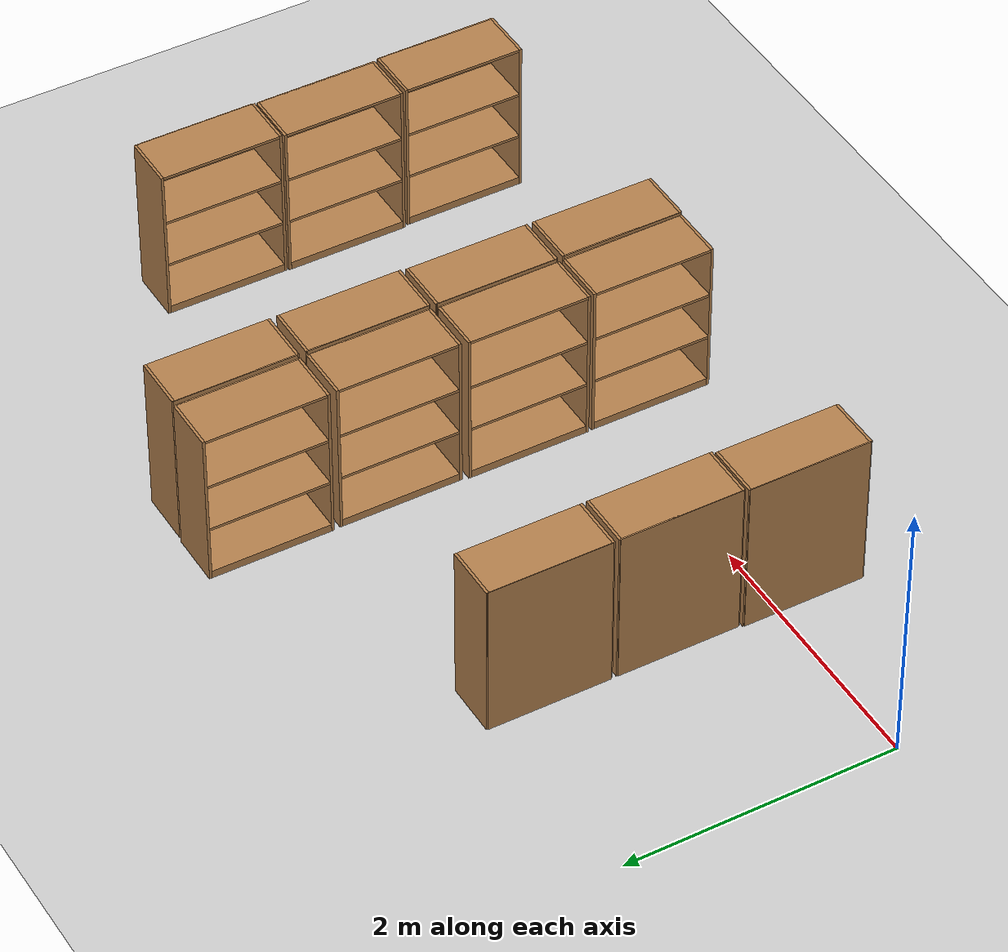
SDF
<sdf version="1.6">
 <world name="default">
  <model name="ground_plane">
   <static>1</static>
   <link name="link">
    <collision name="collision">
     <geometry><plane><normal>0 0 1</normal><size>100 100</size></plane></geometry>
     <surface>
      <contact><collide_bitmask>65535</collide_bitmask></contact>
      <friction><ode><mu>100</mu><mu2>50</mu2></ode></friction>
     </surface>
    </collision>
    <visual name="visual">
     <cast_shadows>0</cast_shadows>
     <geometry><plane><normal>0 0 1</normal><size>100 100</size></plane></geometry>
     <material>
      <script><uri>file://media/materials/scripts/gazebo.material</uri><name>Gazebo/Grey</name></script>
     </material>
    </visual>
   </link>
  </model>
  <model name="bookshelf_clone_110">
   <static>1</static>
   <link name="link">
    <inertial><mass>1</mass></inertial>
    <collision name="back">
     <pose>0 0.005 0.6 0 -0 0</pose>
     <geometry><box><size>0.9 0.01 1.2</size></box></geometry>
    </collision>
    <visual name="visual1">
     <pose>0 0.005 0.6 0 -0 0</pose>
     <geometry><box><size>0.9 0.01 1.2</size></box></geometry>
     <material>
      <script><uri>file://media/materials/scripts/gazebo.material</uri><name>Gazebo/Wood</name></script>
     </material>
    </visual>
    <collision name="left_side">
     <pose>0.45 -0.195 0.6 0 -0 0</pose>
     <geometry><box><size>0.02 0.4 1.2</size></box></geometry>
    </collision>
    <visual name="visual2">
     <pose>0.45 -0.195 0.6 0 -0 0</pose>
     <geometry><box><size>0.02 0.4 1.2</size></box></geometry>
     <material>
      <script><uri>file://media/materials/scripts/gazebo.material</uri><name>Gazebo/Wood</name></script>
     </material>
    </visual>
    <collision name="right_side">
     <pose>-0.45 -0.195 0.6 0 -0 0</pose>
     <geometry><box><size>0.02 0.4 1.2</size></box></geometry>
    </collision>
    <visual name="visual3">
     <pose>-0.45 -0.195 0.6 0 -0 0</pose>
     <geometry><box><size>0.02 0.4 1.2</size></box></geometry>
     <material>
      <script><uri>file://media/materials/scripts/gazebo.material</uri><name>Gazebo/Wood</name></script>
     </material>
    </visual>
    <collision name="bottom">
     <pose>0 -0.195 0.03 0 -0 0</pose>
     <geometry><box><size>0.88 0.4 0.06</size></box></geometry>
    </collision>
    <visual name="visual4">
     <pose>0 -0.195 0.03 0 -0 0</pose>
     <geometry><box><size>0.88 0.4 0.06</size></box></geometry>
     <material>
      <script><uri>file://media/materials/scripts/gazebo.material</uri><name>Gazebo/Wood</name></script>
     </material>
    </visual>
    <collision name="top">
     <pose>0 -0.195 1.19 0 -0 0</pose>
     <geometry><box><size>0.88 0.4 0.02</size></box></geometry>
    </collision>
    <visual name="visual5">
     <pose>0 -0.195 1.19 0 -0 0</pose>
     <geometry><box><size>0.88 0.4 0.02</size></box></geometry>
     <material>
      <script><uri>file://media/materials/scripts/gazebo.material</uri><name>Gazebo/Wood</name></script>
     </material>
    </visual>
    <collision name="low_shelf">
     <pose>0 -0.195 0.43 0 -0 0</pose>
     <geometry><box><size>0.88 0.4 0.02</size></box></geometry>
    </collision>
    <visual name="visual6">
     <pose>0 -0.195 0.43 0 -0 0</pose>
     <geometry><box><size>0.88 0.4 0.02</size></box></geometry>
     <material>
      <script><uri>file://media/materials/scripts/gazebo.material</uri><name>Gazebo/Wood</name></script>
     </material>
    </visual>
    <collision name="high_shelf">
     <pose>0 -0.195 0.8 0 -0 0</pose>
     <geometry><box><size>0.88 0.4 0.02</size></box></geometry>
    </collision>
    <visual name="visual7">
     <pose>0 -0.195 0.8 0 -0 0</pose>
     <geometry><box><size>0.88 0.4 0.02</size></box></geometry>
     <material>
      <script><uri>file://media/materials/scripts/gazebo.material</uri><name>Gazebo/Wood</name></script>
     </material>
    </visual>
   </link>
   <pose>3.89062 2.57464 0 0 0 -1.57004</pose>
  </model>
  <model name="bookshelf_clone_111">
   <static>1</static>
   <link name="link">
    <inertial><mass>1</mass></inertial>
    <collision name="back">
     <pose>0 0.005 0.6 0 -0 0</pose>
     <geometry><box><size>0.9 0.01 1.2</size></box></geometry>
    </collision>
    <visual name="visual1">
     <pose>0 0.005 0.6 0 -0 0</pose>
     <geometry><box><size>0.9 0.01 1.2</size></box></geometry>
     <material>
      <script><uri>file://media/materials/scripts/gazebo.material</uri><name>Gazebo/Wood</name></script>
     </material>
    </visual>
    <collision name="left_side">
     <pose>0.45 -0.195 0.6 0 -0 0</pose>
     <geometry><box><size>0.02 0.4 1.2</size></box></geometry>
    </collision>
    <visual name="visual2">
     <pose>0.45 -0.195 0.6 0 -0 0</pose>
     <geometry><box><size>0.02 0.4 1.2</size></box></geometry>
     <material>
      <script><uri>file://media/materials/scripts/gazebo.material</uri><name>Gazebo/Wood</name></script>
     </material>
    </visual>
    <collision name="right_side">
     <pose>-0.45 -0.195 0.6 0 -0 0</pose>
     <geometry><box><size>0.02 0.4 1.2</size></box></geometry>
    </collision>
    <visual name="visual3">
     <pose>-0.45 -0.195 0.6 0 -0 0</pose>
     <geometry><box><size>0.02 0.4 1.2</size></box></geometry>
     <material>
      <script><uri>file://media/materials/scripts/gazebo.material</uri><name>Gazebo/Wood</name></script>
     </material>
    </visual>
    <collision name="bottom">
     <pose>0 -0.195 0.03 0 -0 0</pose>
     <geometry><box><size>0.88 0.4 0.06</size></box></geometry>
    </collision>
    <visual name="visual4">
     <pose>0 -0.195 0.03 0 -0 0</pose>
     <geometry><box><size>0.88 0.4 0.06</size></box></geometry>
     <material>
      <script><uri>file://media/materials/scripts/gazebo.material</uri><name>Gazebo/Wood</name></script>
     </material>
    </visual>
    <collision name="top">
     <pose>0 -0.195 1.19 0 -0 0</pose>
     <geometry><box><size>0.88 0.4 0.02</size></box></geometry>
    </collision>
    <visual name="visual5">
     <pose>0 -0.195 1.19 0 -0 0</pose>
     <geometry><box><size>0.88 0.4 0.02</size></box></geometry>
     <material>
      <script><uri>file://media/materials/scripts/gazebo.material</uri><name>Gazebo/Wood</name></script>
     </material>
    </visual>
    <collision name="low_shelf">
     <pose>0 -0.195 0.43 0 -0 0</pose>
     <geometry><box><size>0.88 0.4 0.02</size></box></geometry>
    </collision>
    <visual name="visual6">
     <pose>0 -0.195 0.43 0 -0 0</pose>
     <geometry><box><size>0.88 0.4 0.02</size></box></geometry>
     <material>
      <script><uri>file://media/materials/scripts/gazebo.material</uri><name>Gazebo/Wood</name></script>
     </material>
    </visual>
    <collision name="high_shelf">
     <pose>0 -0.195 0.8 0 -0 0</pose>
     <geometry><box><size>0.88 0.4 0.02</size></box></geometry>
    </collision>
    <visual name="visual7">
     <pose>0 -0.195 0.8 0 -0 0</pose>
     <geometry><box><size>0.88 0.4 0.02</size></box></geometry>
     <material>
      <script><uri>file://media/materials/scripts/gazebo.material</uri><name>Gazebo/Wood</name></script>
     </material>
    </visual>
   </link>
   <pose>3.89594 1.60842 0 0 0 -1.57004</pose>
  </model>
  <model name="bookshelf_clone_112">
   <static>1</static>
   <link name="link">
    <inertial><mass>1</mass></inertial>
    <collision name="back">
     <pose>0 0.005 0.6 0 -0 0</pose>
     <geometry><box><size>0.9 0.01 1.2</size></box></geometry>
    </collision>
    <visual name="visual1">
     <pose>0 0.005 0.6 0 -0 0</pose>
     <geometry><box><size>0.9 0.01 1.2</size></box></geometry>
     <material>
      <script><uri>file://media/materials/scripts/gazebo.material</uri><name>Gazebo/Wood</name></script>
     </material>
    </visual>
    <collision name="left_side">
     <pose>0.45 -0.195 0.6 0 -0 0</pose>
     <geometry><box><size>0.02 0.4 1.2</size></box></geometry>
    </collision>
    <visual name="visual2">
     <pose>0.45 -0.195 0.6 0 -0 0</pose>
     <geometry><box><size>0.02 0.4 1.2</size></box></geometry>
     <material>
      <script><uri>file://media/materials/scripts/gazebo.material</uri><name>Gazebo/Wood</name></script>
     </material>
    </visual>
    <collision name="right_side">
     <pose>-0.45 -0.195 0.6 0 -0 0</pose>
     <geometry><box><size>0.02 0.4 1.2</size></box></geometry>
    </collision>
    <visual name="visual3">
     <pose>-0.45 -0.195 0.6 0 -0 0</pose>
     <geometry><box><size>0.02 0.4 1.2</size></box></geometry>
     <material>
      <script><uri>file://media/materials/scripts/gazebo.material</uri><name>Gazebo/Wood</name></script>
     </material>
    </visual>
    <collision name="bottom">
     <pose>0 -0.195 0.03 0 -0 0</pose>
     <geometry><box><size>0.88 0.4 0.06</size></box></geometry>
    </collision>
    <visual name="visual4">
     <pose>0 -0.195 0.03 0 -0 0</pose>
     <geometry><box><size>0.88 0.4 0.06</size></box></geometry>
     <material>
      <script><uri>file://media/materials/scripts/gazebo.material</uri><name>Gazebo/Wood</name></script>
     </material>
    </visual>
    <collision name="top">
     <pose>0 -0.195 1.19 0 -0 0</pose>
     <geometry><box><size>0.88 0.4 0.02</size></box></geometry>
    </collision>
    <visual name="visual5">
     <pose>0 -0.195 1.19 0 -0 0</pose>
     <geometry><box><size>0.88 0.4 0.02</size></box></geometry>
     <material>
      <script><uri>file://media/materials/scripts/gazebo.material</uri><name>Gazebo/Wood</name></script>
     </material>
    </visual>
    <collision name="low_shelf">
     <pose>0 -0.195 0.43 0 -0 0</pose>
     <geometry><box><size>0.88 0.4 0.02</size></box></geometry>
    </collision>
    <visual name="visual6">
     <pose>0 -0.195 0.43 0 -0 0</pose>
     <geometry><box><size>0.88 0.4 0.02</size></box></geometry>
     <material>
      <script><uri>file://media/materials/scripts/gazebo.material</uri><name>Gazebo/Wood</name></script>
     </material>
    </visual>
    <collision name="high_shelf">
     <pose>0 -0.195 0.8 0 -0 0</pose>
     <geometry><box><size>0.88 0.4 0.02</size></box></geometry>
    </collision>
    <visual name="visual7">
     <pose>0 -0.195 0.8 0 -0 0</pose>
     <geometry><box><size>0.88 0.4 0.02</size></box></geometry>
     <material>
      <script><uri>file://media/materials/scripts/gazebo.material</uri><name>Gazebo/Wood</name></script>
     </material>
    </visual>
   </link>
   <pose>3.88348 0.646573 0 0 0 -1.57004</pose>
  </model>
  <model name="bookshelf_clone_113">
   <static>1</static>
   <link name="link">
    <inertial><mass>1</mass></inertial>
    <collision name="back">
     <pose>0 0.005 0.6 0 -0 0</pose>
     <geometry><box><size>0.9 0.01 1.2</size></box></geometry>
    </collision>
    <visual name="visual1">
     <pose>0 0.005 0.6 0 -0 0</pose>
     <geometry><box><size>0.9 0.01 1.2</size></box></geometry>
     <material>
      <script><uri>file://media/materials/scripts/gazebo.material</uri><name>Gazebo/Wood</name></script>
     </material>
    </visual>
    <collision name="left_side">
     <pose>0.45 -0.195 0.6 0 -0 0</pose>
     <geometry><box><size>0.02 0.4 1.2</size></box></geometry>
    </collision>
    <visual name="visual2">
     <pose>0.45 -0.195 0.6 0 -0 0</pose>
     <geometry><box><size>0.02 0.4 1.2</size></box></geometry>
     <material>
      <script><uri>file://media/materials/scripts/gazebo.material</uri><name>Gazebo/Wood</name></script>
     </material>
    </visual>
    <collision name="right_side">
     <pose>-0.45 -0.195 0.6 0 -0 0</pose>
     <geometry><box><size>0.02 0.4 1.2</size></box></geometry>
    </collision>
    <visual name="visual3">
     <pose>-0.45 -0.195 0.6 0 -0 0</pose>
     <geometry><box><size>0.02 0.4 1.2</size></box></geometry>
     <material>
      <script><uri>file://media/materials/scripts/gazebo.material</uri><name>Gazebo/Wood</name></script>
     </material>
    </visual>
    <collision name="bottom">
     <pose>0 -0.195 0.03 0 -0 0</pose>
     <geometry><box><size>0.88 0.4 0.06</size></box></geometry>
    </collision>
    <visual name="visual4">
     <pose>0 -0.195 0.03 0 -0 0</pose>
     <geometry><box><size>0.88 0.4 0.06</size></box></geometry>
     <material>
      <script><uri>file://media/materials/scripts/gazebo.material</uri><name>Gazebo/Wood</name></script>
     </material>
    </visual>
    <collision name="top">
     <pose>0 -0.195 1.19 0 -0 0</pose>
     <geometry><box><size>0.88 0.4 0.02</size></box></geometry>
    </collision>
    <visual name="visual5">
     <pose>0 -0.195 1.19 0 -0 0</pose>
     <geometry><box><size>0.88 0.4 0.02</size></box></geometry>
     <material>
      <script><uri>file://media/materials/scripts/gazebo.material</uri><name>Gazebo/Wood</name></script>
     </material>
    </visual>
    <collision name="low_shelf">
     <pose>0 -0.195 0.43 0 -0 0</pose>
     <geometry><box><size>0.88 0.4 0.02</size></box></geometry>
    </collision>
    <visual name="visual6">
     <pose>0 -0.195 0.43 0 -0 0</pose>
     <geometry><box><size>0.88 0.4 0.02</size></box></geometry>
     <material>
      <script><uri>file://media/materials/scripts/gazebo.material</uri><name>Gazebo/Wood</name></script>
     </material>
    </visual>
    <collision name="high_shelf">
     <pose>0 -0.195 0.8 0 -0 0</pose>
     <geometry><box><size>0.88 0.4 0.02</size></box></geometry>
    </collision>
    <visual name="visual7">
     <pose>0 -0.195 0.8 0 -0 0</pose>
     <geometry><box><size>0.88 0.4 0.02</size></box></geometry>
     <material>
      <script><uri>file://media/materials/scripts/gazebo.material</uri><name>Gazebo/Wood</name></script>
     </material>
    </visual>
   </link>
   <pose>3.88873 -0.298113 0 0 0 -1.57004</pose>
  </model>
  <model name="bookshelf_clone_118">
   <static>1</static>
   <link name="link">
    <inertial><mass>1</mass></inertial>
    <collision name="back">
     <pose>0 0.005 0.6 0 -0 0</pose>
     <geometry><box><size>0.9 0.01 1.2</size></box></geometry>
    </collision>
    <visual name="visual1">
     <pose>0 0.005 0.6 0 -0 0</pose>
     <geometry><box><size>0.9 0.01 1.2</size></box></geometry>
     <material>
      <script><uri>file://media/materials/scripts/gazebo.material</uri><name>Gazebo/Wood</name></script>
     </material>
    </visual>
    <collision name="left_side">
     <pose>0.45 -0.195 0.6 0 -0 0</pose>
     <geometry><box><size>0.02 0.4 1.2</size></box></geometry>
    </collision>
    <visual name="visual2">
     <pose>0.45 -0.195 0.6 0 -0 0</pose>
     <geometry><box><size>0.02 0.4 1.2</size></box></geometry>
     <material>
      <script><uri>file://media/materials/scripts/gazebo.material</uri><name>Gazebo/Wood</name></script>
     </material>
    </visual>
    <collision name="right_side">
     <pose>-0.45 -0.195 0.6 0 -0 0</pose>
     <geometry><box><size>0.02 0.4 1.2</size></box></geometry>
    </collision>
    <visual name="visual3">
     <pose>-0.45 -0.195 0.6 0 -0 0</pose>
     <geometry><box><size>0.02 0.4 1.2</size></box></geometry>
     <material>
      <script><uri>file://media/materials/scripts/gazebo.material</uri><name>Gazebo/Wood</name></script>
     </material>
    </visual>
    <collision name="bottom">
     <pose>0 -0.195 0.03 0 -0 0</pose>
     <geometry><box><size>0.88 0.4 0.06</size></box></geometry>
    </collision>
    <visual name="visual4">
     <pose>0 -0.195 0.03 0 -0 0</pose>
     <geometry><box><size>0.88 0.4 0.06</size></box></geometry>
     <material>
      <script><uri>file://media/materials/scripts/gazebo.material</uri><name>Gazebo/Wood</name></script>
     </material>
    </visual>
    <collision name="top">
     <pose>0 -0.195 1.19 0 -0 0</pose>
     <geometry><box><size>0.88 0.4 0.02</size></box></geometry>
    </collision>
    <visual name="visual5">
     <pose>0 -0.195 1.19 0 -0 0</pose>
     <geometry><box><size>0.88 0.4 0.02</size></box></geometry>
     <material>
      <script><uri>file://media/materials/scripts/gazebo.material</uri><name>Gazebo/Wood</name></script>
     </material>
    </visual>
    <collision name="low_shelf">
     <pose>0 -0.195 0.43 0 -0 0</pose>
     <geometry><box><size>0.88 0.4 0.02</size></box></geometry>
    </collision>
    <visual name="visual6">
     <pose>0 -0.195 0.43 0 -0 0</pose>
     <geometry><box><size>0.88 0.4 0.02</size></box></geometry>
     <material>
      <script><uri>file://media/materials/scripts/gazebo.material</uri><name>Gazebo/Wood</name></script>
     </material>
    </visual>
    <collision name="high_shelf">
     <pose>0 -0.195 0.8 0 -0 0</pose>
     <geometry><box><size>0.88 0.4 0.02</size></box></geometry>
    </collision>
    <visual name="visual7">
     <pose>0 -0.195 0.8 0 -0 0</pose>
     <geometry><box><size>0.88 0.4 0.02</size></box></geometry>
     <material>
      <script><uri>file://media/materials/scripts/gazebo.material</uri><name>Gazebo/Wood</name></script>
     </material>
    </visual>
   </link>
   <pose>6.34379 1.61431 0 0 0 -1.57004</pose>
  </model>
  <model name="bookshelf_clone_119">
   <static>1</static>
   <link name="link">
    <inertial><mass>1</mass></inertial>
    <collision name="back">
     <pose>0 0.005 0.6 0 -0 0</pose>
     <geometry><box><size>0.9 0.01 1.2</size></box></geometry>
    </collision>
    <visual name="visual1">
     <pose>0 0.005 0.6 0 -0 0</pose>
     <geometry><box><size>0.9 0.01 1.2</size></box></geometry>
     <material>
      <script><uri>file://media/materials/scripts/gazebo.material</uri><name>Gazebo/Wood</name></script>
     </material>
    </visual>
    <collision name="left_side">
     <pose>0.45 -0.195 0.6 0 -0 0</pose>
     <geometry><box><size>0.02 0.4 1.2</size></box></geometry>
    </collision>
    <visual name="visual2">
     <pose>0.45 -0.195 0.6 0 -0 0</pose>
     <geometry><box><size>0.02 0.4 1.2</size></box></geometry>
     <material>
      <script><uri>file://media/materials/scripts/gazebo.material</uri><name>Gazebo/Wood</name></script>
     </material>
    </visual>
    <collision name="right_side">
     <pose>-0.45 -0.195 0.6 0 -0 0</pose>
     <geometry><box><size>0.02 0.4 1.2</size></box></geometry>
    </collision>
    <visual name="visual3">
     <pose>-0.45 -0.195 0.6 0 -0 0</pose>
     <geometry><box><size>0.02 0.4 1.2</size></box></geometry>
     <material>
      <script><uri>file://media/materials/scripts/gazebo.material</uri><name>Gazebo/Wood</name></script>
     </material>
    </visual>
    <collision name="bottom">
     <pose>0 -0.195 0.03 0 -0 0</pose>
     <geometry><box><size>0.88 0.4 0.06</size></box></geometry>
    </collision>
    <visual name="visual4">
     <pose>0 -0.195 0.03 0 -0 0</pose>
     <geometry><box><size>0.88 0.4 0.06</size></box></geometry>
     <material>
      <script><uri>file://media/materials/scripts/gazebo.material</uri><name>Gazebo/Wood</name></script>
     </material>
    </visual>
    <collision name="top">
     <pose>0 -0.195 1.19 0 -0 0</pose>
     <geometry><box><size>0.88 0.4 0.02</size></box></geometry>
    </collision>
    <visual name="visual5">
     <pose>0 -0.195 1.19 0 -0 0</pose>
     <geometry><box><size>0.88 0.4 0.02</size></box></geometry>
     <material>
      <script><uri>file://media/materials/scripts/gazebo.material</uri><name>Gazebo/Wood</name></script>
     </material>
    </visual>
    <collision name="low_shelf">
     <pose>0 -0.195 0.43 0 -0 0</pose>
     <geometry><box><size>0.88 0.4 0.02</size></box></geometry>
    </collision>
    <visual name="visual6">
     <pose>0 -0.195 0.43 0 -0 0</pose>
     <geometry><box><size>0.88 0.4 0.02</size></box></geometry>
     <material>
      <script><uri>file://media/materials/scripts/gazebo.material</uri><name>Gazebo/Wood</name></script>
     </material>
    </visual>
    <collision name="high_shelf">
     <pose>0 -0.195 0.8 0 -0 0</pose>
     <geometry><box><size>0.88 0.4 0.02</size></box></geometry>
    </collision>
    <visual name="visual7">
     <pose>0 -0.195 0.8 0 -0 0</pose>
     <geometry><box><size>0.88 0.4 0.02</size></box></geometry>
     <material>
      <script><uri>file://media/materials/scripts/gazebo.material</uri><name>Gazebo/Wood</name></script>
     </material>
    </visual>
   </link>
   <pose>6.33729 0.683725 0 0 0 -1.57004</pose>
  </model>
  <model name="bookshelf_clone_120">
   <static>1</static>
   <link name="link">
    <inertial><mass>1</mass></inertial>
    <collision name="back">
     <pose>0 0.005 0.6 0 -0 0</pose>
     <geometry><box><size>0.9 0.01 1.2</size></box></geometry>
    </collision>
    <visual name="visual1">
     <pose>0 0.005 0.6 0 -0 0</pose>
     <geometry><box><size>0.9 0.01 1.2</size></box></geometry>
     <material>
      <script><uri>file://media/materials/scripts/gazebo.material</uri><name>Gazebo/Wood</name></script>
     </material>
    </visual>
    <collision name="left_side">
     <pose>0.45 -0.195 0.6 0 -0 0</pose>
     <geometry><box><size>0.02 0.4 1.2</size></box></geometry>
    </collision>
    <visual name="visual2">
     <pose>0.45 -0.195 0.6 0 -0 0</pose>
     <geometry><box><size>0.02 0.4 1.2</size></box></geometry>
     <material>
      <script><uri>file://media/materials/scripts/gazebo.material</uri><name>Gazebo/Wood</name></script>
     </material>
    </visual>
    <collision name="right_side">
     <pose>-0.45 -0.195 0.6 0 -0 0</pose>
     <geometry><box><size>0.02 0.4 1.2</size></box></geometry>
    </collision>
    <visual name="visual3">
     <pose>-0.45 -0.195 0.6 0 -0 0</pose>
     <geometry><box><size>0.02 0.4 1.2</size></box></geometry>
     <material>
      <script><uri>file://media/materials/scripts/gazebo.material</uri><name>Gazebo/Wood</name></script>
     </material>
    </visual>
    <collision name="bottom">
     <pose>0 -0.195 0.03 0 -0 0</pose>
     <geometry><box><size>0.88 0.4 0.06</size></box></geometry>
    </collision>
    <visual name="visual4">
     <pose>0 -0.195 0.03 0 -0 0</pose>
     <geometry><box><size>0.88 0.4 0.06</size></box></geometry>
     <material>
      <script><uri>file://media/materials/scripts/gazebo.material</uri><name>Gazebo/Wood</name></script>
     </material>
    </visual>
    <collision name="top">
     <pose>0 -0.195 1.19 0 -0 0</pose>
     <geometry><box><size>0.88 0.4 0.02</size></box></geometry>
    </collision>
    <visual name="visual5">
     <pose>0 -0.195 1.19 0 -0 0</pose>
     <geometry><box><size>0.88 0.4 0.02</size></box></geometry>
     <material>
      <script><uri>file://media/materials/scripts/gazebo.material</uri><name>Gazebo/Wood</name></script>
     </material>
    </visual>
    <collision name="low_shelf">
     <pose>0 -0.195 0.43 0 -0 0</pose>
     <geometry><box><size>0.88 0.4 0.02</size></box></geometry>
    </collision>
    <visual name="visual6">
     <pose>0 -0.195 0.43 0 -0 0</pose>
     <geometry><box><size>0.88 0.4 0.02</size></box></geometry>
     <material>
      <script><uri>file://media/materials/scripts/gazebo.material</uri><name>Gazebo/Wood</name></script>
     </material>
    </visual>
    <collision name="high_shelf">
     <pose>0 -0.195 0.8 0 -0 0</pose>
     <geometry><box><size>0.88 0.4 0.02</size></box></geometry>
    </collision>
    <visual name="visual7">
     <pose>0 -0.195 0.8 0 -0 0</pose>
     <geometry><box><size>0.88 0.4 0.02</size></box></geometry>
     <material>
      <script><uri>file://media/materials/scripts/gazebo.material</uri><name>Gazebo/Wood</name></script>
     </material>
    </visual>
   </link>
   <pose>6.35212 -0.261181 0 0 0 -1.57004</pose>
  </model>
  <model name="bookshelf_clone_126">
   <static>1</static>
   <link name="link">
    <inertial><mass>1</mass></inertial>
    <collision name="back">
     <pose>0 0.005 0.6 0 -0 0</pose>
     <geometry><box><size>0.9 0.01 1.2</size></box></geometry>
    </collision>
    <visual name="visual1">
     <pose>0 0.005 0.6 0 -0 0</pose>
     <geometry><box><size>0.9 0.01 1.2</size></box></geometry>
     <material>
      <script><uri>file://media/materials/scripts/gazebo.material</uri><name>Gazebo/Wood</name></script>
     </material>
    </visual>
    <collision name="left_side">
     <pose>0.45 -0.195 0.6 0 -0 0</pose>
     <geometry><box><size>0.02 0.4 1.2</size></box></geometry>
    </collision>
    <visual name="visual2">
     <pose>0.45 -0.195 0.6 0 -0 0</pose>
     <geometry><box><size>0.02 0.4 1.2</size></box></geometry>
     <material>
      <script><uri>file://media/materials/scripts/gazebo.material</uri><name>Gazebo/Wood</name></script>
     </material>
    </visual>
    <collision name="right_side">
     <pose>-0.45 -0.195 0.6 0 -0 0</pose>
     <geometry><box><size>0.02 0.4 1.2</size></box></geometry>
    </collision>
    <visual name="visual3">
     <pose>-0.45 -0.195 0.6 0 -0 0</pose>
     <geometry><box><size>0.02 0.4 1.2</size></box></geometry>
     <material>
      <script><uri>file://media/materials/scripts/gazebo.material</uri><name>Gazebo/Wood</name></script>
     </material>
    </visual>
    <collision name="bottom">
     <pose>0 -0.195 0.03 0 -0 0</pose>
     <geometry><box><size>0.88 0.4 0.06</size></box></geometry>
    </collision>
    <visual name="visual4">
     <pose>0 -0.195 0.03 0 -0 0</pose>
     <geometry><box><size>0.88 0.4 0.06</size></box></geometry>
     <material>
      <script><uri>file://media/materials/scripts/gazebo.material</uri><name>Gazebo/Wood</name></script>
     </material>
    </visual>
    <collision name="top">
     <pose>0 -0.195 1.19 0 -0 0</pose>
     <geometry><box><size>0.88 0.4 0.02</size></box></geometry>
    </collision>
    <visual name="visual5">
     <pose>0 -0.195 1.19 0 -0 0</pose>
     <geometry><box><size>0.88 0.4 0.02</size></box></geometry>
     <material>
      <script><uri>file://media/materials/scripts/gazebo.material</uri><name>Gazebo/Wood</name></script>
     </material>
    </visual>
    <collision name="low_shelf">
     <pose>0 -0.195 0.43 0 -0 0</pose>
     <geometry><box><size>0.88 0.4 0.02</size></box></geometry>
    </collision>
    <visual name="visual6">
     <pose>0 -0.195 0.43 0 -0 0</pose>
     <geometry><box><size>0.88 0.4 0.02</size></box></geometry>
     <material>
      <script><uri>file://media/materials/scripts/gazebo.material</uri><name>Gazebo/Wood</name></script>
     </material>
    </visual>
    <collision name="high_shelf">
     <pose>0 -0.195 0.8 0 -0 0</pose>
     <geometry><box><size>0.88 0.4 0.02</size></box></geometry>
    </collision>
    <visual name="visual7">
     <pose>0 -0.195 0.8 0 -0 0</pose>
     <geometry><box><size>0.88 0.4 0.02</size></box></geometry>
     <material>
      <script><uri>file://media/materials/scripts/gazebo.material</uri><name>Gazebo/Wood</name></script>
     </material>
    </visual>
   </link>
   <pose>1.42833 1.69174 0 0 -0 1.56949</pose>
  </model>
  <model name="bookshelf_clone_127">
   <static>1</static>
   <link name="link">
    <inertial><mass>1</mass></inertial>
    <collision name="back">
     <pose>0 0.005 0.6 0 -0 0</pose>
     <geometry><box><size>0.9 0.01 1.2</size></box></geometry>
    </collision>
    <visual name="visual1">
     <pose>0 0.005 0.6 0 -0 0</pose>
     <geometry><box><size>0.9 0.01 1.2</size></box></geometry>
     <material>
      <script><uri>file://media/materials/scripts/gazebo.material</uri><name>Gazebo/Wood</name></script>
     </material>
    </visual>
    <collision name="left_side">
     <pose>0.45 -0.195 0.6 0 -0 0</pose>
     <geometry><box><size>0.02 0.4 1.2</size></box></geometry>
    </collision>
    <visual name="visual2">
     <pose>0.45 -0.195 0.6 0 -0 0</pose>
     <geometry><box><size>0.02 0.4 1.2</size></box></geometry>
     <material>
      <script><uri>file://media/materials/scripts/gazebo.material</uri><name>Gazebo/Wood</name></script>
     </material>
    </visual>
    <collision name="right_side">
     <pose>-0.45 -0.195 0.6 0 -0 0</pose>
     <geometry><box><size>0.02 0.4 1.2</size></box></geometry>
    </collision>
    <visual name="visual3">
     <pose>-0.45 -0.195 0.6 0 -0 0</pose>
     <geometry><box><size>0.02 0.4 1.2</size></box></geometry>
     <material>
      <script><uri>file://media/materials/scripts/gazebo.material</uri><name>Gazebo/Wood</name></script>
     </material>
    </visual>
    <collision name="bottom">
     <pose>0 -0.195 0.03 0 -0 0</pose>
     <geometry><box><size>0.88 0.4 0.06</size></box></geometry>
    </collision>
    <visual name="visual4">
     <pose>0 -0.195 0.03 0 -0 0</pose>
     <geometry><box><size>0.88 0.4 0.06</size></box></geometry>
     <material>
      <script><uri>file://media/materials/scripts/gazebo.material</uri><name>Gazebo/Wood</name></script>
     </material>
    </visual>
    <collision name="top">
     <pose>0 -0.195 1.19 0 -0 0</pose>
     <geometry><box><size>0.88 0.4 0.02</size></box></geometry>
    </collision>
    <visual name="visual5">
     <pose>0 -0.195 1.19 0 -0 0</pose>
     <geometry><box><size>0.88 0.4 0.02</size></box></geometry>
     <material>
      <script><uri>file://media/materials/scripts/gazebo.material</uri><name>Gazebo/Wood</name></script>
     </material>
    </visual>
    <collision name="low_shelf">
     <pose>0 -0.195 0.43 0 -0 0</pose>
     <geometry><box><size>0.88 0.4 0.02</size></box></geometry>
    </collision>
    <visual name="visual6">
     <pose>0 -0.195 0.43 0 -0 0</pose>
     <geometry><box><size>0.88 0.4 0.02</size></box></geometry>
     <material>
      <script><uri>file://media/materials/scripts/gazebo.material</uri><name>Gazebo/Wood</name></script>
     </material>
    </visual>
    <collision name="high_shelf">
     <pose>0 -0.195 0.8 0 -0 0</pose>
     <geometry><box><size>0.88 0.4 0.02</size></box></geometry>
    </collision>
    <visual name="visual7">
     <pose>0 -0.195 0.8 0 -0 0</pose>
     <geometry><box><size>0.88 0.4 0.02</size></box></geometry>
     <material>
      <script><uri>file://media/materials/scripts/gazebo.material</uri><name>Gazebo/Wood</name></script>
     </material>
    </visual>
   </link>
   <pose>1.42833 0.742983 0 0 -0 1.56949</pose>
  </model>
  <model name="bookshelf_clone_128">
   <static>1</static>
   <link name="link">
    <inertial><mass>1</mass></inertial>
    <collision name="back">
     <pose>0 0.005 0.6 0 -0 0</pose>
     <geometry><box><size>0.9 0.01 1.2</size></box></geometry>
    </collision>
    <visual name="visual1">
     <pose>0 0.005 0.6 0 -0 0</pose>
     <geometry><box><size>0.9 0.01 1.2</size></box></geometry>
     <material>
      <script><uri>file://media/materials/scripts/gazebo.material</uri><name>Gazebo/Wood</name></script>
     </material>
    </visual>
    <collision name="left_side">
     <pose>0.45 -0.195 0.6 0 -0 0</pose>
     <geometry><box><size>0.02 0.4 1.2</size></box></geometry>
    </collision>
    <visual name="visual2">
     <pose>0.45 -0.195 0.6 0 -0 0</pose>
     <geometry><box><size>0.02 0.4 1.2</size></box></geometry>
     <material>
      <script><uri>file://media/materials/scripts/gazebo.material</uri><name>Gazebo/Wood</name></script>
     </material>
    </visual>
    <collision name="right_side">
     <pose>-0.45 -0.195 0.6 0 -0 0</pose>
     <geometry><box><size>0.02 0.4 1.2</size></box></geometry>
    </collision>
    <visual name="visual3">
     <pose>-0.45 -0.195 0.6 0 -0 0</pose>
     <geometry><box><size>0.02 0.4 1.2</size></box></geometry>
     <material>
      <script><uri>file://media/materials/scripts/gazebo.material</uri><name>Gazebo/Wood</name></script>
     </material>
    </visual>
    <collision name="bottom">
     <pose>0 -0.195 0.03 0 -0 0</pose>
     <geometry><box><size>0.88 0.4 0.06</size></box></geometry>
    </collision>
    <visual name="visual4">
     <pose>0 -0.195 0.03 0 -0 0</pose>
     <geometry><box><size>0.88 0.4 0.06</size></box></geometry>
     <material>
      <script><uri>file://media/materials/scripts/gazebo.material</uri><name>Gazebo/Wood</name></script>
     </material>
    </visual>
    <collision name="top">
     <pose>0 -0.195 1.19 0 -0 0</pose>
     <geometry><box><size>0.88 0.4 0.02</size></box></geometry>
    </collision>
    <visual name="visual5">
     <pose>0 -0.195 1.19 0 -0 0</pose>
     <geometry><box><size>0.88 0.4 0.02</size></box></geometry>
     <material>
      <script><uri>file://media/materials/scripts/gazebo.material</uri><name>Gazebo/Wood</name></script>
     </material>
    </visual>
    <collision name="low_shelf">
     <pose>0 -0.195 0.43 0 -0 0</pose>
     <geometry><box><size>0.88 0.4 0.02</size></box></geometry>
    </collision>
    <visual name="visual6">
     <pose>0 -0.195 0.43 0 -0 0</pose>
     <geometry><box><size>0.88 0.4 0.02</size></box></geometry>
     <material>
      <script><uri>file://media/materials/scripts/gazebo.material</uri><name>Gazebo/Wood</name></script>
     </material>
    </visual>
    <collision name="high_shelf">
     <pose>0 -0.195 0.8 0 -0 0</pose>
     <geometry><box><size>0.88 0.4 0.02</size></box></geometry>
    </collision>
    <visual name="visual7">
     <pose>0 -0.195 0.8 0 -0 0</pose>
     <geometry><box><size>0.88 0.4 0.02</size></box></geometry>
     <material>
      <script><uri>file://media/materials/scripts/gazebo.material</uri><name>Gazebo/Wood</name></script>
     </material>
    </visual>
   </link>
   <pose>1.41049 -0.190965 0 0 -0 1.56949</pose>
  </model>
  <model name="bookshelf_clone_133">
   <static>1</static>
   <link name="link">
    <inertial><mass>1</mass></inertial>
    <collision name="back">
     <pose>0 0.005 0.6 0 -0 0</pose>
     <geometry><box><size>0.9 0.01 1.2</size></box></geometry>
    </collision>
    <visual name="visual1">
     <pose>0 0.005 0.6 0 -0 0</pose>
     <geometry><box><size>0.9 0.01 1.2</size></box></geometry>
     <material>
      <script><uri>file://media/materials/scripts/gazebo.material</uri><name>Gazebo/Wood</name></script>
     </material>
    </visual>
    <collision name="left_side">
     <pose>0.45 -0.195 0.6 0 -0 0</pose>
     <geometry><box><size>0.02 0.4 1.2</size></box></geometry>
    </collision>
    <visual name="visual2">
     <pose>0.45 -0.195 0.6 0 -0 0</pose>
     <geometry><box><size>0.02 0.4 1.2</size></box></geometry>
     <material>
      <script><uri>file://media/materials/scripts/gazebo.material</uri><name>Gazebo/Wood</name></script>
     </material>
    </visual>
    <collision name="right_side">
     <pose>-0.45 -0.195 0.6 0 -0 0</pose>
     <geometry><box><size>0.02 0.4 1.2</size></box></geometry>
    </collision>
    <visual name="visual3">
     <pose>-0.45 -0.195 0.6 0 -0 0</pose>
     <geometry><box><size>0.02 0.4 1.2</size></box></geometry>
     <material>
      <script><uri>file://media/materials/scripts/gazebo.material</uri><name>Gazebo/Wood</name></script>
     </material>
    </visual>
    <collision name="bottom">
     <pose>0 -0.195 0.03 0 -0 0</pose>
     <geometry><box><size>0.88 0.4 0.06</size></box></geometry>
    </collision>
    <visual name="visual4">
     <pose>0 -0.195 0.03 0 -0 0</pose>
     <geometry><box><size>0.88 0.4 0.06</size></box></geometry>
     <material>
      <script><uri>file://media/materials/scripts/gazebo.material</uri><name>Gazebo/Wood</name></script>
     </material>
    </visual>
    <collision name="top">
     <pose>0 -0.195 1.19 0 -0 0</pose>
     <geometry><box><size>0.88 0.4 0.02</size></box></geometry>
    </collision>
    <visual name="visual5">
     <pose>0 -0.195 1.19 0 -0 0</pose>
     <geometry><box><size>0.88 0.4 0.02</size></box></geometry>
     <material>
      <script><uri>file://media/materials/scripts/gazebo.material</uri><name>Gazebo/Wood</name></script>
     </material>
    </visual>
    <collision name="low_shelf">
     <pose>0 -0.195 0.43 0 -0 0</pose>
     <geometry><box><size>0.88 0.4 0.02</size></box></geometry>
    </collision>
    <visual name="visual6">
     <pose>0 -0.195 0.43 0 -0 0</pose>
     <geometry><box><size>0.88 0.4 0.02</size></box></geometry>
     <material>
      <script><uri>file://media/materials/scripts/gazebo.material</uri><name>Gazebo/Wood</name></script>
     </material>
    </visual>
    <collision name="high_shelf">
     <pose>0 -0.195 0.8 0 -0 0</pose>
     <geometry><box><size>0.88 0.4 0.02</size></box></geometry>
    </collision>
    <visual name="visual7">
     <pose>0 -0.195 0.8 0 -0 0</pose>
     <geometry><box><size>0.88 0.4 0.02</size></box></geometry>
     <material>
      <script><uri>file://media/materials/scripts/gazebo.material</uri><name>Gazebo/Wood</name></script>
     </material>
    </visual>
   </link>
   <pose>3.94205 2.56441 0 0 -0 1.56949</pose>
  </model>
  <model name="bookshelf_clone_134">
   <static>1</static>
   <link name="link">
    <inertial><mass>1</mass></inertial>
    <collision name="back">
     <pose>0 0.005 0.6 0 -0 0</pose>
     <geometry><box><size>0.9 0.01 1.2</size></box></geometry>
    </collision>
    <visual name="visual1">
     <pose>0 0.005 0.6 0 -0 0</pose>
     <geometry><box><size>0.9 0.01 1.2</size></box></geometry>
     <material>
      <script><uri>file://media/materials/scripts/gazebo.material</uri><name>Gazebo/Wood</name></script>
     </material>
    </visual>
    <collision name="left_side">
     <pose>0.45 -0.195 0.6 0 -0 0</pose>
     <geometry><box><size>0.02 0.4 1.2</size></box></geometry>
    </collision>
    <visual name="visual2">
     <pose>0.45 -0.195 0.6 0 -0 0</pose>
     <geometry><box><size>0.02 0.4 1.2</size></box></geometry>
     <material>
      <script><uri>file://media/materials/scripts/gazebo.material</uri><name>Gazebo/Wood</name></script>
     </material>
    </visual>
    <collision name="right_side">
     <pose>-0.45 -0.195 0.6 0 -0 0</pose>
     <geometry><box><size>0.02 0.4 1.2</size></box></geometry>
    </collision>
    <visual name="visual3">
     <pose>-0.45 -0.195 0.6 0 -0 0</pose>
     <geometry><box><size>0.02 0.4 1.2</size></box></geometry>
     <material>
      <script><uri>file://media/materials/scripts/gazebo.material</uri><name>Gazebo/Wood</name></script>
     </material>
    </visual>
    <collision name="bottom">
     <pose>0 -0.195 0.03 0 -0 0</pose>
     <geometry><box><size>0.88 0.4 0.06</size></box></geometry>
    </collision>
    <visual name="visual4">
     <pose>0 -0.195 0.03 0 -0 0</pose>
     <geometry><box><size>0.88 0.4 0.06</size></box></geometry>
     <material>
      <script><uri>file://media/materials/scripts/gazebo.material</uri><name>Gazebo/Wood</name></script>
     </material>
    </visual>
    <collision name="top">
     <pose>0 -0.195 1.19 0 -0 0</pose>
     <geometry><box><size>0.88 0.4 0.02</size></box></geometry>
    </collision>
    <visual name="visual5">
     <pose>0 -0.195 1.19 0 -0 0</pose>
     <geometry><box><size>0.88 0.4 0.02</size></box></geometry>
     <material>
      <script><uri>file://media/materials/scripts/gazebo.material</uri><name>Gazebo/Wood</name></script>
     </material>
    </visual>
    <collision name="low_shelf">
     <pose>0 -0.195 0.43 0 -0 0</pose>
     <geometry><box><size>0.88 0.4 0.02</size></box></geometry>
    </collision>
    <visual name="visual6">
     <pose>0 -0.195 0.43 0 -0 0</pose>
     <geometry><box><size>0.88 0.4 0.02</size></box></geometry>
     <material>
      <script><uri>file://media/materials/scripts/gazebo.material</uri><name>Gazebo/Wood</name></script>
     </material>
    </visual>
    <collision name="high_shelf">
     <pose>0 -0.195 0.8 0 -0 0</pose>
     <geometry><box><size>0.88 0.4 0.02</size></box></geometry>
    </collision>
    <visual name="visual7">
     <pose>0 -0.195 0.8 0 -0 0</pose>
     <geometry><box><size>0.88 0.4 0.02</size></box></geometry>
     <material>
      <script><uri>file://media/materials/scripts/gazebo.material</uri><name>Gazebo/Wood</name></script>
     </material>
    </visual>
   </link>
   <pose>3.94205 1.59528 0 0 -0 1.56949</pose>
  </model>
  <model name="bookshelf_clone_135">
   <static>1</static>
   <link name="link">
    <inertial><mass>1</mass></inertial>
    <collision name="back">
     <pose>0 0.005 0.6 0 -0 0</pose>
     <geometry><box><size>0.9 0.01 1.2</size></box></geometry>
    </collision>
    <visual name="visual1">
     <pose>0 0.005 0.6 0 -0 0</pose>
     <geometry><box><size>0.9 0.01 1.2</size></box></geometry>
     <material>
      <script><uri>file://media/materials/scripts/gazebo.material</uri><name>Gazebo/Wood</name></script>
     </material>
    </visual>
    <collision name="left_side">
     <pose>0.45 -0.195 0.6 0 -0 0</pose>
     <geometry><box><size>0.02 0.4 1.2</size></box></geometry>
    </collision>
    <visual name="visual2">
     <pose>0.45 -0.195 0.6 0 -0 0</pose>
     <geometry><box><size>0.02 0.4 1.2</size></box></geometry>
     <material>
      <script><uri>file://media/materials/scripts/gazebo.material</uri><name>Gazebo/Wood</name></script>
     </material>
    </visual>
    <collision name="right_side">
     <pose>-0.45 -0.195 0.6 0 -0 0</pose>
     <geometry><box><size>0.02 0.4 1.2</size></box></geometry>
    </collision>
    <visual name="visual3">
     <pose>-0.45 -0.195 0.6 0 -0 0</pose>
     <geometry><box><size>0.02 0.4 1.2</size></box></geometry>
     <material>
      <script><uri>file://media/materials/scripts/gazebo.material</uri><name>Gazebo/Wood</name></script>
     </material>
    </visual>
    <collision name="bottom">
     <pose>0 -0.195 0.03 0 -0 0</pose>
     <geometry><box><size>0.88 0.4 0.06</size></box></geometry>
    </collision>
    <visual name="visual4">
     <pose>0 -0.195 0.03 0 -0 0</pose>
     <geometry><box><size>0.88 0.4 0.06</size></box></geometry>
     <material>
      <script><uri>file://media/materials/scripts/gazebo.material</uri><name>Gazebo/Wood</name></script>
     </material>
    </visual>
    <collision name="top">
     <pose>0 -0.195 1.19 0 -0 0</pose>
     <geometry><box><size>0.88 0.4 0.02</size></box></geometry>
    </collision>
    <visual name="visual5">
     <pose>0 -0.195 1.19 0 -0 0</pose>
     <geometry><box><size>0.88 0.4 0.02</size></box></geometry>
     <material>
      <script><uri>file://media/materials/scripts/gazebo.material</uri><name>Gazebo/Wood</name></script>
     </material>
    </visual>
    <collision name="low_shelf">
     <pose>0 -0.195 0.43 0 -0 0</pose>
     <geometry><box><size>0.88 0.4 0.02</size></box></geometry>
    </collision>
    <visual name="visual6">
     <pose>0 -0.195 0.43 0 -0 0</pose>
     <geometry><box><size>0.88 0.4 0.02</size></box></geometry>
     <material>
      <script><uri>file://media/materials/scripts/gazebo.material</uri><name>Gazebo/Wood</name></script>
     </material>
    </visual>
    <collision name="high_shelf">
     <pose>0 -0.195 0.8 0 -0 0</pose>
     <geometry><box><size>0.88 0.4 0.02</size></box></geometry>
    </collision>
    <visual name="visual7">
     <pose>0 -0.195 0.8 0 -0 0</pose>
     <geometry><box><size>0.88 0.4 0.02</size></box></geometry>
     <material>
      <script><uri>file://media/materials/scripts/gazebo.material</uri><name>Gazebo/Wood</name></script>
     </material>
    </visual>
   </link>
   <pose>3.93006 0.642692 0 0 -0 1.56949</pose>
  </model>
  <model name="bookshelf_clone_136">
   <static>1</static>
   <link name="link">
    <inertial><mass>1</mass></inertial>
    <collision name="back">
     <pose>0 0.005 0.6 0 -0 0</pose>
     <geometry><box><size>0.9 0.01 1.2</size></box></geometry>
    </collision>
    <visual name="visual1">
     <pose>0 0.005 0.6 0 -0 0</pose>
     <geometry><box><size>0.9 0.01 1.2</size></box></geometry>
     <material>
      <script><uri>file://media/materials/scripts/gazebo.material</uri><name>Gazebo/Wood</name></script>
     </material>
    </visual>
    <collision name="left_side">
     <pose>0.45 -0.195 0.6 0 -0 0</pose>
     <geometry><box><size>0.02 0.4 1.2</size></box></geometry>
    </collision>
    <visual name="visual2">
     <pose>0.45 -0.195 0.6 0 -0 0</pose>
     <geometry><box><size>0.02 0.4 1.2</size></box></geometry>
     <material>
      <script><uri>file://media/materials/scripts/gazebo.material</uri><name>Gazebo/Wood</name></script>
     </material>
    </visual>
    <collision name="right_side">
     <pose>-0.45 -0.195 0.6 0 -0 0</pose>
     <geometry><box><size>0.02 0.4 1.2</size></box></geometry>
    </collision>
    <visual name="visual3">
     <pose>-0.45 -0.195 0.6 0 -0 0</pose>
     <geometry><box><size>0.02 0.4 1.2</size></box></geometry>
     <material>
      <script><uri>file://media/materials/scripts/gazebo.material</uri><name>Gazebo/Wood</name></script>
     </material>
    </visual>
    <collision name="bottom">
     <pose>0 -0.195 0.03 0 -0 0</pose>
     <geometry><box><size>0.88 0.4 0.06</size></box></geometry>
    </collision>
    <visual name="visual4">
     <pose>0 -0.195 0.03 0 -0 0</pose>
     <geometry><box><size>0.88 0.4 0.06</size></box></geometry>
     <material>
      <script><uri>file://media/materials/scripts/gazebo.material</uri><name>Gazebo/Wood</name></script>
     </material>
    </visual>
    <collision name="top">
     <pose>0 -0.195 1.19 0 -0 0</pose>
     <geometry><box><size>0.88 0.4 0.02</size></box></geometry>
    </collision>
    <visual name="visual5">
     <pose>0 -0.195 1.19 0 -0 0</pose>
     <geometry><box><size>0.88 0.4 0.02</size></box></geometry>
     <material>
      <script><uri>file://media/materials/scripts/gazebo.material</uri><name>Gazebo/Wood</name></script>
     </material>
    </visual>
    <collision name="low_shelf">
     <pose>0 -0.195 0.43 0 -0 0</pose>
     <geometry><box><size>0.88 0.4 0.02</size></box></geometry>
    </collision>
    <visual name="visual6">
     <pose>0 -0.195 0.43 0 -0 0</pose>
     <geometry><box><size>0.88 0.4 0.02</size></box></geometry>
     <material>
      <script><uri>file://media/materials/scripts/gazebo.material</uri><name>Gazebo/Wood</name></script>
     </material>
    </visual>
    <collision name="high_shelf">
     <pose>0 -0.195 0.8 0 -0 0</pose>
     <geometry><box><size>0.88 0.4 0.02</size></box></geometry>
    </collision>
    <visual name="visual7">
     <pose>0 -0.195 0.8 0 -0 0</pose>
     <geometry><box><size>0.88 0.4 0.02</size></box></geometry>
     <material>
      <script><uri>file://media/materials/scripts/gazebo.material</uri><name>Gazebo/Wood</name></script>
     </material>
    </visual>
   </link>
   <pose>3.93006 -0.315344 0 0 -0 1.56949</pose>
  </model>
 </world>
</sdf>
